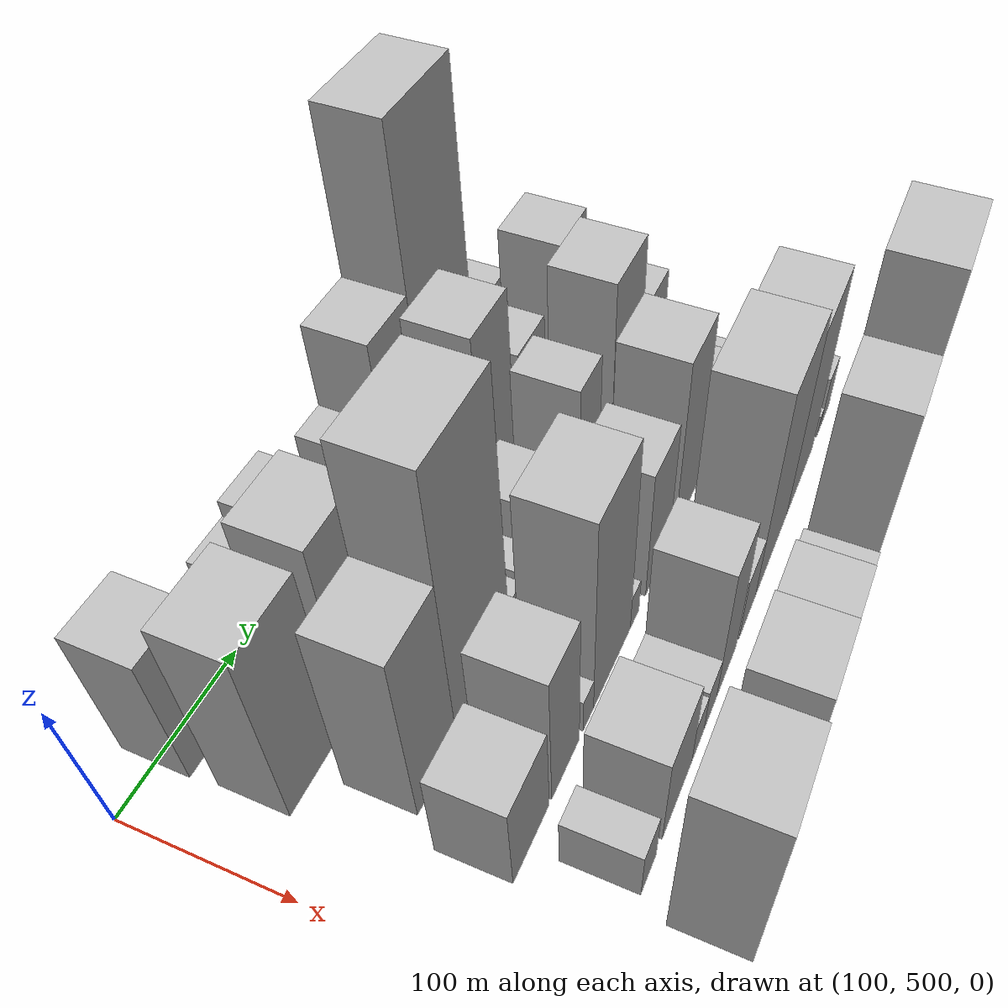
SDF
<sdf version="1.6">
 <world name="default">
  <model name="building_42">
   <static>1</static>
   <pose>100.0000 550.4257 0 0.000000 0.000000 0.000000</pose>
   <link name="link">
    <pose>0 0 49.50 0 0 0</pose>
    <collision name="collision"><geometry><box><size>40.0000 38.2665 99.0000</size></box></geometry></collision>
    <visual name="visual">
     <cast_shadows>0</cast_shadows>
     <geometry><box><size>40.0000 38.2665 99.0000</size></box></geometry>
     <material>
      <script>
       <uri>model://HANNAS_wall/materials/scripts</uri>
       <uri>model://HANNAS_wall/materials/textures</uri>
       <name>vrc/HANNAS_wall</name>
      </script>
     </material>
    </visual>
   </link>
  </model>
  <model name="building_43">
   <static>1</static>
   <pose>100.0000 574.9701 0 0.000000 0.000000 0.000000</pose>
   <link name="link">
    <pose>0 0 12.00 0 0 0</pose>
    <collision name="collision"><geometry><box><size>40.0000 10.8223 24.0000</size></box></geometry></collision>
    <visual name="visual">
     <cast_shadows>0</cast_shadows>
     <geometry><box><size>40.0000 10.8223 24.0000</size></box></geometry>
     <material>
      <script>
       <uri>model://HANNAS_wall/materials/scripts</uri>
       <uri>model://HANNAS_wall/materials/textures</uri>
       <name>vrc/HANNAS_wall</name>
      </script>
     </material>
    </visual>
   </link>
  </model>
  <model name="building_44">
   <static>1</static>
   <pose>100.0000 598.8165 0 0.000000 0.000000 0.000000</pose>
   <link name="link">
    <pose>0 0 18.00 0 0 0</pose>
    <collision name="collision"><geometry><box><size>40.0000 18.8705 36.0000</size></box></geometry></collision>
    <visual name="visual">
     <cast_shadows>0</cast_shadows>
     <geometry><box><size>40.0000 18.8705 36.0000</size></box></geometry>
     <material>
      <script>
       <uri>model://HANNAS_wall/materials/scripts</uri>
       <uri>model://HANNAS_wall/materials/textures</uri>
       <name>vrc/HANNAS_wall</name>
      </script>
     </material>
    </visual>
   </link>
  </model>
  <model name="building_45">
   <static>1</static>
   <pose>100.0000 624.0069 0 0.000000 0.000000 0.000000</pose>
   <link name="link">
    <pose>0 0 28.50 0 0 0</pose>
    <collision name="collision"><geometry><box><size>40.0000 31.5103 57.0000</size></box></geometry></collision>
    <visual name="visual">
     <cast_shadows>0</cast_shadows>
     <geometry><box><size>40.0000 31.5103 57.0000</size></box></geometry>
     <material>
      <script>
       <uri>model://HANNAS_wall/materials/scripts</uri>
       <uri>model://HANNAS_wall/materials/textures</uri>
       <name>vrc/HANNAS_wall</name>
      </script>
     </material>
    </visual>
   </link>
  </model>
  <model name="building_46">
   <static>1</static>
   <pose>100.0000 658.3995 0 0.000000 0.000000 0.000000</pose>
   <link name="link">
    <pose>0 0 34.50 0 0 0</pose>
    <collision name="collision"><geometry><box><size>40.0000 37.2749 69.0000</size></box></geometry></collision>
    <visual name="visual">
     <cast_shadows>0</cast_shadows>
     <geometry><box><size>40.0000 37.2749 69.0000</size></box></geometry>
     <material>
      <script>
       <uri>model://HANNAS_wall/materials/scripts</uri>
       <uri>model://HANNAS_wall/materials/textures</uri>
       <name>vrc/HANNAS_wall</name>
      </script>
     </material>
    </visual>
   </link>
  </model>
  <model name="building_47">
   <static>1</static>
   <pose>100.0000 689.6576 0 0.000000 0.000000 0.000000</pose>
   <link name="link">
    <pose>0 0 16.50 0 0 0</pose>
    <collision name="collision"><geometry><box><size>40.0000 19.2412 33.0000</size></box></geometry></collision>
    <visual name="visual">
     <cast_shadows>0</cast_shadows>
     <geometry><box><size>40.0000 19.2412 33.0000</size></box></geometry>
     <material>
      <script>
       <uri>model://HANNAS_wall/materials/scripts</uri>
       <uri>model://HANNAS_wall/materials/textures</uri>
       <name>vrc/HANNAS_wall</name>
      </script>
     </material>
    </visual>
   </link>
  </model>
  <model name="building_48">
   <static>1</static>
   <pose>100.0000 719.0875 0 0.000000 0.000000 0.000000</pose>
   <link name="link">
    <pose>0 0 25.50 0 0 0</pose>
    <collision name="collision"><geometry><box><size>40.0000 25.6186 51.0000</size></box></geometry></collision>
    <visual name="visual">
     <cast_shadows>0</cast_shadows>
     <geometry><box><size>40.0000 25.6186 51.0000</size></box></geometry>
     <material>
      <script>
       <uri>model://HANNAS_wall/materials/scripts</uri>
       <uri>model://HANNAS_wall/materials/textures</uri>
       <name>vrc/HANNAS_wall</name>
      </script>
     </material>
    </visual>
   </link>
  </model>
  <model name="building_49">
   <static>1</static>
   <pose>100.0000 753.2575 0 0.000000 0.000000 0.000000</pose>
   <link name="link">
    <pose>0 0 55.50 0 0 0</pose>
    <collision name="collision"><geometry><box><size>40.0000 42.7213 111.0000</size></box></geometry></collision>
    <visual name="visual">
     <cast_shadows>0</cast_shadows>
     <geometry><box><size>40.0000 42.7213 111.0000</size></box></geometry>
     <material>
      <script>
       <uri>model://HANNAS_wall/materials/scripts</uri>
       <uri>model://HANNAS_wall/materials/textures</uri>
       <name>vrc/HANNAS_wall</name>
      </script>
     </material>
    </visual>
   </link>
  </model>
  <model name="building_50">
   <static>1</static>
   <pose>100.0000 809.2298 0 0.000000 0.000000 0.000000</pose>
   <link name="link">
    <pose>0 0 109.50 0 0 0</pose>
    <collision name="collision"><geometry><box><size>40.0000 69.2233 219.0000</size></box></geometry></collision>
    <visual name="visual">
     <cast_shadows>0</cast_shadows>
     <geometry><box><size>40.0000 69.2233 219.0000</size></box></geometry>
     <material>
      <script>
       <uri>model://HANNAS_wall/materials/scripts</uri>
       <uri>model://HANNAS_wall/materials/textures</uri>
       <name>vrc/HANNAS_wall</name>
      </script>
     </material>
    </visual>
   </link>
  </model>
  <model name="building_51">
   <static>1</static>
   <pose>100.0000 854.1598 0 0.000000 0.000000 0.000000</pose>
   <link name="link">
    <pose>0 0 18.00 0 0 0</pose>
    <collision name="collision"><geometry><box><size>40.0000 20.6368 36.0000</size></box></geometry></collision>
    <visual name="visual">
     <cast_shadows>0</cast_shadows>
     <geometry><box><size>40.0000 20.6368 36.0000</size></box></geometry>
     <material>
      <script>
       <uri>model://HANNAS_wall/materials/scripts</uri>
       <uri>model://HANNAS_wall/materials/textures</uri>
       <name>vrc/HANNAS_wall</name>
      </script>
     </material>
    </visual>
   </link>
  </model>
  <model name="building_52">
   <static>1</static>
   <pose>100.0000 883.8272 0 0.000000 0.000000 0.000000</pose>
   <link name="link">
    <pose>0 0 19.50 0 0 0</pose>
    <collision name="collision"><geometry><box><size>40.0000 20.6978 39.0000</size></box></geometry></collision>
    <visual name="visual">
     <cast_shadows>0</cast_shadows>
     <geometry><box><size>40.0000 20.6978 39.0000</size></box></geometry>
     <material>
      <script>
       <uri>model://HANNAS_wall/materials/scripts</uri>
       <uri>model://HANNAS_wall/materials/textures</uri>
       <name>vrc/HANNAS_wall</name>
      </script>
     </material>
    </visual>
   </link>
  </model>
  <model name="building_96">
   <static>1</static>
   <pose>155.0000 557.0531 0 0.000000 0.000000 0.000000</pose>
   <link name="link">
    <pose>0 0 67.50 0 0 0</pose>
    <collision name="collision"><geometry><box><size>40.0000 47.2754 135.0000</size></box></geometry></collision>
    <visual name="visual">
     <cast_shadows>0</cast_shadows>
     <geometry><box><size>40.0000 47.2754 135.0000</size></box></geometry>
     <material>
      <script>
       <uri>model://HANNAS_wall/materials/scripts</uri>
       <uri>model://HANNAS_wall/materials/textures</uri>
       <name>vrc/HANNAS_wall</name>
      </script>
     </material>
    </visual>
   </link>
  </model>
  <model name="building_97">
   <static>1</static>
   <pose>155.0000 585.0731 0 0.000000 0.000000 0.000000</pose>
   <link name="link">
    <pose>0 0 9.00 0 0 0</pose>
    <collision name="collision"><geometry><box><size>40.0000 8.7645 18.0000</size></box></geometry></collision>
    <visual name="visual">
     <cast_shadows>0</cast_shadows>
     <geometry><box><size>40.0000 8.7645 18.0000</size></box></geometry>
     <material>
      <script>
       <uri>model://HANNAS_wall/materials/scripts</uri>
       <uri>model://HANNAS_wall/materials/textures</uri>
       <name>vrc/HANNAS_wall</name>
      </script>
     </material>
    </visual>
   </link>
  </model>
  <model name="building_98">
   <static>1</static>
   <pose>155.0000 611.7370 0 0.000000 0.000000 0.000000</pose>
   <link name="link">
    <pose>0 0 69.00 0 0 0</pose>
    <collision name="collision"><geometry><box><size>40.0000 44.5635 138.0000</size></box></geometry></collision>
    <visual name="visual">
     <cast_shadows>0</cast_shadows>
     <geometry><box><size>40.0000 44.5635 138.0000</size></box></geometry>
     <material>
      <script>
       <uri>model://HANNAS_wall/materials/scripts</uri>
       <uri>model://HANNAS_wall/materials/textures</uri>
       <name>vrc/HANNAS_wall</name>
      </script>
     </material>
    </visual>
   </link>
  </model>
  <model name="building_99">
   <static>1</static>
   <pose>155.0000 651.3429 0 0.000000 0.000000 0.000000</pose>
   <link name="link">
    <pose>0 0 31.50 0 0 0</pose>
    <collision name="collision"><geometry><box><size>40.0000 34.6483 63.0000</size></box></geometry></collision>
    <visual name="visual">
     <cast_shadows>0</cast_shadows>
     <geometry><box><size>40.0000 34.6483 63.0000</size></box></geometry>
     <material>
      <script>
       <uri>model://HANNAS_wall/materials/scripts</uri>
       <uri>model://HANNAS_wall/materials/textures</uri>
       <name>vrc/HANNAS_wall</name>
      </script>
     </material>
    </visual>
   </link>
  </model>
  <model name="building_100">
   <static>1</static>
   <pose>155.0000 685.5887 0 0.000000 0.000000 0.000000</pose>
   <link name="link">
    <pose>0 0 52.50 0 0 0</pose>
    <collision name="collision"><geometry><box><size>40.0000 33.8432 105.0000</size></box></geometry></collision>
    <visual name="visual">
     <cast_shadows>0</cast_shadows>
     <geometry><box><size>40.0000 33.8432 105.0000</size></box></geometry>
     <material>
      <script>
       <uri>model://HANNAS_wall/materials/scripts</uri>
       <uri>model://HANNAS_wall/materials/textures</uri>
       <name>vrc/HANNAS_wall</name>
      </script>
     </material>
    </visual>
   </link>
  </model>
  <model name="building_101">
   <static>1</static>
   <pose>155.0000 722.6549 0 0.000000 0.000000 0.000000</pose>
   <link name="link">
    <pose>0 0 39.00 0 0 0</pose>
    <collision name="collision"><geometry><box><size>40.0000 40.2891 78.0000</size></box></geometry></collision>
    <visual name="visual">
     <cast_shadows>0</cast_shadows>
     <geometry><box><size>40.0000 40.2891 78.0000</size></box></geometry>
     <material>
      <script>
       <uri>model://HANNAS_wall/materials/scripts</uri>
       <uri>model://HANNAS_wall/materials/textures</uri>
       <name>vrc/HANNAS_wall</name>
      </script>
     </material>
    </visual>
   </link>
  </model>
  <model name="building_102">
   <static>1</static>
   <pose>155.0000 764.3181 0 0.000000 0.000000 0.000000</pose>
   <link name="link">
    <pose>0 0 63.00 0 0 0</pose>
    <collision name="collision"><geometry><box><size>40.0000 43.0373 126.0000</size></box></geometry></collision>
    <visual name="visual">
     <cast_shadows>0</cast_shadows>
     <geometry><box><size>40.0000 43.0373 126.0000</size></box></geometry>
     <material>
      <script>
       <uri>model://HANNAS_wall/materials/scripts</uri>
       <uri>model://HANNAS_wall/materials/textures</uri>
       <name>vrc/HANNAS_wall</name>
      </script>
     </material>
    </visual>
   </link>
  </model>
  <model name="building_103">
   <static>1</static>
   <pose>155.0000 813.4108 0 0.000000 0.000000 0.000000</pose>
   <link name="link">
    <pose>0 0 34.50 0 0 0</pose>
    <collision name="collision"><geometry><box><size>40.0000 37.1483 69.0000</size></box></geometry></collision>
    <visual name="visual">
     <cast_shadows>0</cast_shadows>
     <geometry><box><size>40.0000 37.1483 69.0000</size></box></geometry>
     <material>
      <script>
       <uri>model://HANNAS_wall/materials/scripts</uri>
       <uri>model://HANNAS_wall/materials/textures</uri>
       <name>vrc/HANNAS_wall</name>
      </script>
     </material>
    </visual>
   </link>
  </model>
  <model name="building_104">
   <static>1</static>
   <pose>155.0000 840.2839 0 0.000000 0.000000 0.000000</pose>
   <link name="link">
    <pose>0 0 15.00 0 0 0</pose>
    <collision name="collision"><geometry><box><size>40.0000 16.5977 30.0000</size></box></geometry></collision>
    <visual name="visual">
     <cast_shadows>0</cast_shadows>
     <geometry><box><size>40.0000 16.5977 30.0000</size></box></geometry>
     <material>
      <script>
       <uri>model://HANNAS_wall/materials/scripts</uri>
       <uri>model://HANNAS_wall/materials/textures</uri>
       <name>vrc/HANNAS_wall</name>
      </script>
     </material>
    </visual>
   </link>
  </model>
  <model name="building_105">
   <static>1</static>
   <pose>155.0000 852.5069 0 0.000000 0.000000 0.000000</pose>
   <link name="link">
    <pose>0 0 9.00 0 0 0</pose>
    <collision name="collision"><geometry><box><size>40.0000 7.8483 18.0000</size></box></geometry></collision>
    <visual name="visual">
     <cast_shadows>0</cast_shadows>
     <geometry><box><size>40.0000 7.8483 18.0000</size></box></geometry>
     <material>
      <script>
       <uri>model://HANNAS_wall/materials/scripts</uri>
       <uri>model://HANNAS_wall/materials/textures</uri>
       <name>vrc/HANNAS_wall</name>
      </script>
     </material>
    </visual>
   </link>
  </model>
  <model name="building_106">
   <static>1</static>
   <pose>155.0000 876.2023 0 0.000000 0.000000 0.000000</pose>
   <link name="link">
    <pose>0 0 51.00 0 0 0</pose>
    <collision name="collision"><geometry><box><size>40.0000 39.5424 102.0000</size></box></geometry></collision>
    <visual name="visual">
     <cast_shadows>0</cast_shadows>
     <geometry><box><size>40.0000 39.5424 102.0000</size></box></geometry>
     <material>
      <script>
       <uri>model://HANNAS_wall/materials/scripts</uri>
       <uri>model://HANNAS_wall/materials/textures</uri>
       <name>vrc/HANNAS_wall</name>
      </script>
     </material>
    </visual>
   </link>
  </model>
  <model name="building_152">
   <static>1</static>
   <pose>210.0000 578.0092 0 0.000000 0.000000 0.000000</pose>
   <link name="link">
    <pose>0 0 66.00 0 0 0</pose>
    <collision name="collision"><geometry><box><size>40.0000 41.3582 132.0000</size></box></geometry></collision>
    <visual name="visual">
     <cast_shadows>0</cast_shadows>
     <geometry><box><size>40.0000 41.3582 132.0000</size></box></geometry>
     <material>
      <script>
       <uri>model://HANNAS_wall/materials/scripts</uri>
       <uri>model://HANNAS_wall/materials/textures</uri>
       <name>vrc/HANNAS_wall</name>
      </script>
     </material>
    </visual>
   </link>
  </model>
  <model name="building_153">
   <static>1</static>
   <pose>210.0000 629.7726 0 0.000000 0.000000 0.000000</pose>
   <link name="link">
    <pose>0 0 102.00 0 0 0</pose>
    <collision name="collision"><geometry><box><size>40.0000 62.1686 204.0000</size></box></geometry></collision>
    <visual name="visual">
     <cast_shadows>0</cast_shadows>
     <geometry><box><size>40.0000 62.1686 204.0000</size></box></geometry>
     <material>
      <script>
       <uri>model://HANNAS_wall/materials/scripts</uri>
       <uri>model://HANNAS_wall/materials/textures</uri>
       <name>vrc/HANNAS_wall</name>
      </script>
     </material>
    </visual>
   </link>
  </model>
  <model name="building_154">
   <static>1</static>
   <pose>210.0000 669.2479 0 0.000000 0.000000 0.000000</pose>
   <link name="link">
    <pose>0 0 16.50 0 0 0</pose>
    <collision name="collision"><geometry><box><size>40.0000 16.7820 33.0000</size></box></geometry></collision>
    <visual name="visual">
     <cast_shadows>0</cast_shadows>
     <geometry><box><size>40.0000 16.7820 33.0000</size></box></geometry>
     <material>
      <script>
       <uri>model://HANNAS_wall/materials/scripts</uri>
       <uri>model://HANNAS_wall/materials/textures</uri>
       <name>vrc/HANNAS_wall</name>
      </script>
     </material>
    </visual>
   </link>
  </model>
  <model name="building_155">
   <static>1</static>
   <pose>210.0000 691.4380 0 0.000000 0.000000 0.000000</pose>
   <link name="link">
    <pose>0 0 16.50 0 0 0</pose>
    <collision name="collision"><geometry><box><size>40.0000 19.5983 33.0000</size></box></geometry></collision>
    <visual name="visual">
     <cast_shadows>0</cast_shadows>
     <geometry><box><size>40.0000 19.5983 33.0000</size></box></geometry>
     <material>
      <script>
       <uri>model://HANNAS_wall/materials/scripts</uri>
       <uri>model://HANNAS_wall/materials/textures</uri>
       <name>vrc/HANNAS_wall</name>
      </script>
     </material>
    </visual>
   </link>
  </model>
  <model name="building_156">
   <static>1</static>
   <pose>210.0000 719.7959 0 0.000000 0.000000 0.000000</pose>
   <link name="link">
    <pose>0 0 31.50 0 0 0</pose>
    <collision name="collision"><geometry><box><size>40.0000 37.1176 63.0000</size></box></geometry></collision>
    <visual name="visual">
     <cast_shadows>0</cast_shadows>
     <geometry><box><size>40.0000 37.1176 63.0000</size></box></geometry>
     <material>
      <script>
       <uri>model://HANNAS_wall/materials/scripts</uri>
       <uri>model://HANNAS_wall/materials/textures</uri>
       <name>vrc/HANNAS_wall</name>
      </script>
     </material>
    </visual>
   </link>
  </model>
  <model name="building_157">
   <static>1</static>
   <pose>210.0000 742.1201 0 0.000000 0.000000 0.000000</pose>
   <link name="link">
    <pose>0 0 9.00 0 0 0</pose>
    <collision name="collision"><geometry><box><size>40.0000 7.5308 18.0000</size></box></geometry></collision>
    <visual name="visual">
     <cast_shadows>0</cast_shadows>
     <geometry><box><size>40.0000 7.5308 18.0000</size></box></geometry>
     <material>
      <script>
       <uri>model://HANNAS_wall/materials/scripts</uri>
       <uri>model://HANNAS_wall/materials/textures</uri>
       <name>vrc/HANNAS_wall</name>
      </script>
     </material>
    </visual>
   </link>
  </model>
  <model name="building_158">
   <static>1</static>
   <pose>210.0000 769.8649 0 0.000000 0.000000 0.000000</pose>
   <link name="link">
    <pose>0 0 49.50 0 0 0</pose>
    <collision name="collision"><geometry><box><size>40.0000 29.9588 99.0000</size></box></geometry></collision>
    <visual name="visual">
     <cast_shadows>0</cast_shadows>
     <geometry><box><size>40.0000 29.9588 99.0000</size></box></geometry>
     <material>
      <script>
       <uri>model://HANNAS_wall/materials/scripts</uri>
       <uri>model://HANNAS_wall/materials/textures</uri>
       <name>vrc/HANNAS_wall</name>
      </script>
     </material>
    </visual>
   </link>
  </model>
  <model name="building_159">
   <static>1</static>
   <pose>210.0000 795.9917 0 0.000000 0.000000 0.000000</pose>
   <link name="link">
    <pose>0 0 15.00 0 0 0</pose>
    <collision name="collision"><geometry><box><size>40.0000 16.2948 30.0000</size></box></geometry></collision>
    <visual name="visual">
     <cast_shadows>0</cast_shadows>
     <geometry><box><size>40.0000 16.2948 30.0000</size></box></geometry>
     <material>
      <script>
       <uri>model://HANNAS_wall/materials/scripts</uri>
       <uri>model://HANNAS_wall/materials/textures</uri>
       <name>vrc/HANNAS_wall</name>
      </script>
     </material>
    </visual>
   </link>
  </model>
  <model name="building_160">
   <static>1</static>
   <pose>210.0000 826.7779 0 0.000000 0.000000 0.000000</pose>
   <link name="link">
    <pose>0 0 66.00 0 0 0</pose>
    <collision name="collision"><geometry><box><size>40.0000 45.2776 132.0000</size></box></geometry></collision>
    <visual name="visual">
     <cast_shadows>0</cast_shadows>
     <geometry><box><size>40.0000 45.2776 132.0000</size></box></geometry>
     <material>
      <script>
       <uri>model://HANNAS_wall/materials/scripts</uri>
       <uri>model://HANNAS_wall/materials/textures</uri>
       <name>vrc/HANNAS_wall</name>
      </script>
     </material>
    </visual>
   </link>
  </model>
  <model name="building_161">
   <static>1</static>
   <pose>210.0000 871.3362 0 0.000000 0.000000 0.000000</pose>
   <link name="link">
    <pose>0 0 37.50 0 0 0</pose>
    <collision name="collision"><geometry><box><size>40.0000 43.8389 75.0000</size></box></geometry></collision>
    <visual name="visual">
     <cast_shadows>0</cast_shadows>
     <geometry><box><size>40.0000 43.8389 75.0000</size></box></geometry>
     <material>
      <script>
       <uri>model://HANNAS_wall/materials/scripts</uri>
       <uri>model://HANNAS_wall/materials/textures</uri>
       <name>vrc/HANNAS_wall</name>
      </script>
     </material>
    </visual>
   </link>
  </model>
  <model name="building_202">
   <static>1</static>
   <pose>265.0000 565.7689 0 0.000000 0.000000 0.000000</pose>
   <link name="link">
    <pose>0 0 34.50 0 0 0</pose>
    <collision name="collision"><geometry><box><size>40.0000 40.6914 69.0000</size></box></geometry></collision>
    <visual name="visual">
     <cast_shadows>0</cast_shadows>
     <geometry><box><size>40.0000 40.6914 69.0000</size></box></geometry>
     <material>
      <script>
       <uri>model://HANNAS_wall/materials/scripts</uri>
       <uri>model://HANNAS_wall/materials/textures</uri>
       <name>vrc/HANNAS_wall</name>
      </script>
     </material>
    </visual>
   </link>
  </model>
  <model name="building_203">
   <static>1</static>
   <pose>265.0000 606.1366 0 0.000000 0.000000 0.000000</pose>
   <link name="link">
    <pose>0 0 52.50 0 0 0</pose>
    <collision name="collision"><geometry><box><size>40.0000 34.0441 105.0000</size></box></geometry></collision>
    <visual name="visual">
     <cast_shadows>0</cast_shadows>
     <geometry><box><size>40.0000 34.0441 105.0000</size></box></geometry>
     <material>
      <script>
       <uri>model://HANNAS_wall/materials/scripts</uri>
       <uri>model://HANNAS_wall/materials/textures</uri>
       <name>vrc/HANNAS_wall</name>
      </script>
     </material>
    </visual>
   </link>
  </model>
  <model name="building_204">
   <static>1</static>
   <pose>265.0000 634.8743 0 0.000000 0.000000 0.000000</pose>
   <link name="link">
    <pose>0 0 13.50 0 0 0</pose>
    <collision name="collision"><geometry><box><size>40.0000 13.4312 27.0000</size></box></geometry></collision>
    <visual name="visual">
     <cast_shadows>0</cast_shadows>
     <geometry><box><size>40.0000 13.4312 27.0000</size></box></geometry>
     <material>
      <script>
       <uri>model://HANNAS_wall/materials/scripts</uri>
       <uri>model://HANNAS_wall/materials/textures</uri>
       <name>vrc/HANNAS_wall</name>
      </script>
     </material>
    </visual>
   </link>
  </model>
  <model name="building_205">
   <static>1</static>
   <pose>265.0000 667.3376 0 0.000000 0.000000 0.000000</pose>
   <link name="link">
    <pose>0 0 75.00 0 0 0</pose>
    <collision name="collision"><geometry><box><size>40.0000 51.4954 150.0000</size></box></geometry></collision>
    <visual name="visual">
     <cast_shadows>0</cast_shadows>
     <geometry><box><size>40.0000 51.4954 150.0000</size></box></geometry>
     <material>
      <script>
       <uri>model://HANNAS_wall/materials/scripts</uri>
       <uri>model://HANNAS_wall/materials/textures</uri>
       <name>vrc/HANNAS_wall</name>
      </script>
     </material>
    </visual>
   </link>
  </model>
  <model name="building_206">
   <static>1</static>
   <pose>265.0000 699.6134 0 0.000000 0.000000 0.000000</pose>
   <link name="link">
    <pose>0 0 13.50 0 0 0</pose>
    <collision name="collision"><geometry><box><size>40.0000 13.0563 27.0000</size></box></geometry></collision>
    <visual name="visual">
     <cast_shadows>0</cast_shadows>
     <geometry><box><size>40.0000 13.0563 27.0000</size></box></geometry>
     <material>
      <script>
       <uri>model://HANNAS_wall/materials/scripts</uri>
       <uri>model://HANNAS_wall/materials/textures</uri>
       <name>vrc/HANNAS_wall</name>
      </script>
     </material>
    </visual>
   </link>
  </model>
  <model name="building_207">
   <static>1</static>
   <pose>265.0000 734.8294 0 0.000000 0.000000 0.000000</pose>
   <link name="link">
    <pose>0 0 49.50 0 0 0</pose>
    <collision name="collision"><geometry><box><size>40.0000 37.3757 99.0000</size></box></geometry></collision>
    <visual name="visual">
     <cast_shadows>0</cast_shadows>
     <geometry><box><size>40.0000 37.3757 99.0000</size></box></geometry>
     <material>
      <script>
       <uri>model://HANNAS_wall/materials/scripts</uri>
       <uri>model://HANNAS_wall/materials/textures</uri>
       <name>vrc/HANNAS_wall</name>
      </script>
     </material>
    </visual>
   </link>
  </model>
  <model name="building_208">
   <static>1</static>
   <pose>265.0000 783.5186 0 0.000000 0.000000 0.000000</pose>
   <link name="link">
    <pose>0 0 66.00 0 0 0</pose>
    <collision name="collision"><geometry><box><size>40.0000 40.0027 132.0000</size></box></geometry></collision>
    <visual name="visual">
     <cast_shadows>0</cast_shadows>
     <geometry><box><size>40.0000 40.0027 132.0000</size></box></geometry>
     <material>
      <script>
       <uri>model://HANNAS_wall/materials/scripts</uri>
       <uri>model://HANNAS_wall/materials/textures</uri>
       <name>vrc/HANNAS_wall</name>
      </script>
     </material>
    </visual>
   </link>
  </model>
  <model name="building_209">
   <static>1</static>
   <pose>265.0000 823.6337 0 0.000000 0.000000 0.000000</pose>
   <link name="link">
    <pose>0 0 36.00 0 0 0</pose>
    <collision name="collision"><geometry><box><size>40.0000 40.2276 72.0000</size></box></geometry></collision>
    <visual name="visual">
     <cast_shadows>0</cast_shadows>
     <geometry><box><size>40.0000 40.2276 72.0000</size></box></geometry>
     <material>
      <script>
       <uri>model://HANNAS_wall/materials/scripts</uri>
       <uri>model://HANNAS_wall/materials/textures</uri>
       <name>vrc/HANNAS_wall</name>
      </script>
     </material>
    </visual>
   </link>
  </model>
  <model name="building_210">
   <static>1</static>
   <pose>265.0000 856.1819 0 0.000000 0.000000 0.000000</pose>
   <link name="link">
    <pose>0 0 13.50 0 0 0</pose>
    <collision name="collision"><geometry><box><size>40.0000 10.8686 27.0000</size></box></geometry></collision>
    <visual name="visual">
     <cast_shadows>0</cast_shadows>
     <geometry><box><size>40.0000 10.8686 27.0000</size></box></geometry>
     <material>
      <script>
       <uri>model://HANNAS_wall/materials/scripts</uri>
       <uri>model://HANNAS_wall/materials/textures</uri>
       <name>vrc/HANNAS_wall</name>
      </script>
     </material>
    </visual>
   </link>
  </model>
  <model name="building_211">
   <static>1</static>
   <pose>265.0000 872.7451 0 0.000000 0.000000 0.000000</pose>
   <link name="link">
    <pose>0 0 21.00 0 0 0</pose>
    <collision name="collision"><geometry><box><size>40.0000 22.2577 42.0000</size></box></geometry></collision>
    <visual name="visual">
     <cast_shadows>0</cast_shadows>
     <geometry><box><size>40.0000 22.2577 42.0000</size></box></geometry>
     <material>
      <script>
       <uri>model://HANNAS_wall/materials/scripts</uri>
       <uri>model://HANNAS_wall/materials/textures</uri>
       <name>vrc/HANNAS_wall</name>
      </script>
     </material>
    </visual>
   </link>
  </model>
  <model name="building_212">
   <static>1</static>
   <pose>265.0000 890.4538 0 0.000000 0.000000 0.000000</pose>
   <link name="link">
    <pose>0 0 13.50 0 0 0</pose>
    <collision name="collision"><geometry><box><size>40.0000 13.1598 27.0000</size></box></geometry></collision>
    <visual name="visual">
     <cast_shadows>0</cast_shadows>
     <geometry><box><size>40.0000 13.1598 27.0000</size></box></geometry>
     <material>
      <script>
       <uri>model://HANNAS_wall/materials/scripts</uri>
       <uri>model://HANNAS_wall/materials/textures</uri>
       <name>vrc/HANNAS_wall</name>
      </script>
     </material>
    </visual>
   </link>
  </model>
  <model name="building_260">
   <static>1</static>
   <pose>320.0000 573.2337 0 0.000000 0.000000 0.000000</pose>
   <link name="link">
    <pose>0 0 19.50 0 0 0</pose>
    <collision name="collision"><geometry><box><size>40.0000 20.1006 39.0000</size></box></geometry></collision>
    <visual name="visual">
     <cast_shadows>0</cast_shadows>
     <geometry><box><size>40.0000 20.1006 39.0000</size></box></geometry>
     <material>
      <script>
       <uri>model://HANNAS_wall/materials/scripts</uri>
       <uri>model://HANNAS_wall/materials/textures</uri>
       <name>vrc/HANNAS_wall</name>
      </script>
     </material>
    </visual>
   </link>
  </model>
  <model name="building_261">
   <static>1</static>
   <pose>320.0000 612.2150 0 0.000000 0.000000 0.000000</pose>
   <link name="link">
    <pose>0 0 36.00 0 0 0</pose>
    <collision name="collision"><geometry><box><size>40.0000 41.8619 72.0000</size></box></geometry></collision>
    <visual name="visual">
     <cast_shadows>0</cast_shadows>
     <geometry><box><size>40.0000 41.8619 72.0000</size></box></geometry>
     <material>
      <script>
       <uri>model://HANNAS_wall/materials/scripts</uri>
       <uri>model://HANNAS_wall/materials/textures</uri>
       <name>vrc/HANNAS_wall</name>
      </script>
     </material>
    </visual>
   </link>
  </model>
  <model name="building_262">
   <static>1</static>
   <pose>320.0000 642.3257 0 0.000000 0.000000 0.000000</pose>
   <link name="link">
    <pose>0 0 16.50 0 0 0</pose>
    <collision name="collision"><geometry><box><size>40.0000 18.3595 33.0000</size></box></geometry></collision>
    <visual name="visual">
     <cast_shadows>0</cast_shadows>
     <geometry><box><size>40.0000 18.3595 33.0000</size></box></geometry>
     <material>
      <script>
       <uri>model://HANNAS_wall/materials/scripts</uri>
       <uri>model://HANNAS_wall/materials/textures</uri>
       <name>vrc/HANNAS_wall</name>
      </script>
     </material>
    </visual>
   </link>
  </model>
  <model name="building_263">
   <static>1</static>
   <pose>320.0000 661.4406 0 0.000000 0.000000 0.000000</pose>
   <link name="link">
    <pose>0 0 18.00 0 0 0</pose>
    <collision name="collision"><geometry><box><size>40.0000 19.8705 36.0000</size></box></geometry></collision>
    <visual name="visual">
     <cast_shadows>0</cast_shadows>
     <geometry><box><size>40.0000 19.8705 36.0000</size></box></geometry>
     <material>
      <script>
       <uri>model://HANNAS_wall/materials/scripts</uri>
       <uri>model://HANNAS_wall/materials/textures</uri>
       <name>vrc/HANNAS_wall</name>
      </script>
     </material>
    </visual>
   </link>
  </model>
  <model name="building_264">
   <static>1</static>
   <pose>320.0000 687.8087 0 0.000000 0.000000 0.000000</pose>
   <link name="link">
    <pose>0 0 52.50 0 0 0</pose>
    <collision name="collision"><geometry><box><size>40.0000 32.8657 105.0000</size></box></geometry></collision>
    <visual name="visual">
     <cast_shadows>0</cast_shadows>
     <geometry><box><size>40.0000 32.8657 105.0000</size></box></geometry>
     <material>
      <script>
       <uri>model://HANNAS_wall/materials/scripts</uri>
       <uri>model://HANNAS_wall/materials/textures</uri>
       <name>vrc/HANNAS_wall</name>
      </script>
     </material>
    </visual>
   </link>
  </model>
  <model name="building_265">
   <static>1</static>
   <pose>320.0000 723.8984 0 0.000000 0.000000 0.000000</pose>
   <link name="link">
    <pose>0 0 25.50 0 0 0</pose>
    <collision name="collision"><geometry><box><size>40.0000 29.3137 51.0000</size></box></geometry></collision>
    <visual name="visual">
     <cast_shadows>0</cast_shadows>
     <geometry><box><size>40.0000 29.3137 51.0000</size></box></geometry>
     <material>
      <script>
       <uri>model://HANNAS_wall/materials/scripts</uri>
       <uri>model://HANNAS_wall/materials/textures</uri>
       <name>vrc/HANNAS_wall</name>
      </script>
     </material>
    </visual>
   </link>
  </model>
  <model name="building_266">
   <static>1</static>
   <pose>320.0000 769.2463 0 0.000000 0.000000 0.000000</pose>
   <link name="link">
    <pose>0 0 78.00 0 0 0</pose>
    <collision name="collision"><geometry><box><size>40.0000 61.3822 156.0000</size></box></geometry></collision>
    <visual name="visual">
     <cast_shadows>0</cast_shadows>
     <geometry><box><size>40.0000 61.3822 156.0000</size></box></geometry>
     <material>
      <script>
       <uri>model://HANNAS_wall/materials/scripts</uri>
       <uri>model://HANNAS_wall/materials/textures</uri>
       <name>vrc/HANNAS_wall</name>
      </script>
     </material>
    </visual>
   </link>
  </model>
  <model name="building_267">
   <static>1</static>
   <pose>320.0000 827.9648 0 0.000000 0.000000 0.000000</pose>
   <link name="link">
    <pose>0 0 70.50 0 0 0</pose>
    <collision name="collision"><geometry><box><size>40.0000 56.0546 141.0000</size></box></geometry></collision>
    <visual name="visual">
     <cast_shadows>0</cast_shadows>
     <geometry><box><size>40.0000 56.0546 141.0000</size></box></geometry>
     <material>
      <script>
       <uri>model://HANNAS_wall/materials/scripts</uri>
       <uri>model://HANNAS_wall/materials/textures</uri>
       <name>vrc/HANNAS_wall</name>
      </script>
     </material>
    </visual>
   </link>
  </model>
  <model name="building_268">
   <static>1</static>
   <pose>320.0000 869.8099 0 0.000000 0.000000 0.000000</pose>
   <link name="link">
    <pose>0 0 9.00 0 0 0</pose>
    <collision name="collision"><geometry><box><size>40.0000 7.6356 18.0000</size></box></geometry></collision>
    <visual name="visual">
     <cast_shadows>0</cast_shadows>
     <geometry><box><size>40.0000 7.6356 18.0000</size></box></geometry>
     <material>
      <script>
       <uri>model://HANNAS_wall/materials/scripts</uri>
       <uri>model://HANNAS_wall/materials/textures</uri>
       <name>vrc/HANNAS_wall</name>
      </script>
     </material>
    </visual>
   </link>
  </model>
  <model name="building_269">
   <static>1</static>
   <pose>320.0000 884.4782 0 0.000000 0.000000 0.000000</pose>
   <link name="link">
    <pose>0 0 21.00 0 0 0</pose>
    <collision name="collision"><geometry><box><size>40.0000 21.7009 42.0000</size></box></geometry></collision>
    <visual name="visual">
     <cast_shadows>0</cast_shadows>
     <geometry><box><size>40.0000 21.7009 42.0000</size></box></geometry>
     <material>
      <script>
       <uri>model://HANNAS_wall/materials/scripts</uri>
       <uri>model://HANNAS_wall/materials/textures</uri>
       <name>vrc/HANNAS_wall</name>
      </script>
     </material>
    </visual>
   </link>
  </model>
  <model name="building_305">
   <static>1</static>
   <pose>375.0000 579.3666 0 0.000000 0.000000 0.000000</pose>
   <link name="link">
    <pose>0 0 64.50 0 0 0</pose>
    <collision name="collision"><geometry><box><size>40.0000 48.6394 129.0000</size></box></geometry></collision>
    <visual name="visual">
     <cast_shadows>0</cast_shadows>
     <geometry><box><size>40.0000 48.6394 129.0000</size></box></geometry>
     <material>
      <script>
       <uri>model://HANNAS_wall/materials/scripts</uri>
       <uri>model://HANNAS_wall/materials/textures</uri>
       <name>vrc/HANNAS_wall</name>
      </script>
     </material>
    </visual>
   </link>
  </model>
  <model name="building_306">
   <static>1</static>
   <pose>375.0000 614.6642 0 0.000000 0.000000 0.000000</pose>
   <link name="link">
    <pose>0 0 19.50 0 0 0</pose>
    <collision name="collision"><geometry><box><size>40.0000 21.9558 39.0000</size></box></geometry></collision>
    <visual name="visual">
     <cast_shadows>0</cast_shadows>
     <geometry><box><size>40.0000 21.9558 39.0000</size></box></geometry>
     <material>
      <script>
       <uri>model://HANNAS_wall/materials/scripts</uri>
       <uri>model://HANNAS_wall/materials/textures</uri>
       <name>vrc/HANNAS_wall</name>
      </script>
     </material>
    </visual>
   </link>
  </model>
  <model name="building_307">
   <static>1</static>
   <pose>375.0000 629.1619 0 0.000000 0.000000 0.000000</pose>
   <link name="link">
    <pose>0 0 7.50 0 0 0</pose>
    <collision name="collision"><geometry><box><size>40.0000 7.0396 15.0000</size></box></geometry></collision>
    <visual name="visual">
     <cast_shadows>0</cast_shadows>
     <geometry><box><size>40.0000 7.0396 15.0000</size></box></geometry>
     <material>
      <script>
       <uri>model://HANNAS_wall/materials/scripts</uri>
       <uri>model://HANNAS_wall/materials/textures</uri>
       <name>vrc/HANNAS_wall</name>
      </script>
     </material>
    </visual>
   </link>
  </model>
  <model name="building_308">
   <static>1</static>
   <pose>375.0000 664.1428 0 0.000000 0.000000 0.000000</pose>
   <link name="link">
    <pose>0 0 42.00 0 0 0</pose>
    <collision name="collision"><geometry><box><size>40.0000 44.9223 84.0000</size></box></geometry></collision>
    <visual name="visual">
     <cast_shadows>0</cast_shadows>
     <geometry><box><size>40.0000 44.9223 84.0000</size></box></geometry>
     <material>
      <script>
       <uri>model://HANNAS_wall/materials/scripts</uri>
       <uri>model://HANNAS_wall/materials/textures</uri>
       <name>vrc/HANNAS_wall</name>
      </script>
     </material>
    </visual>
   </link>
  </model>
  <model name="building_309">
   <static>1</static>
   <pose>375.0000 709.2503 0 0.000000 0.000000 0.000000</pose>
   <link name="link">
    <pose>0 0 36.00 0 0 0</pose>
    <collision name="collision"><geometry><box><size>40.0000 37.2926 72.0000</size></box></geometry></collision>
    <visual name="visual">
     <cast_shadows>0</cast_shadows>
     <geometry><box><size>40.0000 37.2926 72.0000</size></box></geometry>
     <material>
      <script>
       <uri>model://HANNAS_wall/materials/scripts</uri>
       <uri>model://HANNAS_wall/materials/textures</uri>
       <name>vrc/HANNAS_wall</name>
      </script>
     </material>
    </visual>
   </link>
  </model>
  <model name="building_310">
   <static>1</static>
   <pose>375.0000 741.8027 0 0.000000 0.000000 0.000000</pose>
   <link name="link">
    <pose>0 0 24.00 0 0 0</pose>
    <collision name="collision"><geometry><box><size>40.0000 27.8123 48.0000</size></box></geometry></collision>
    <visual name="visual">
     <cast_shadows>0</cast_shadows>
     <geometry><box><size>40.0000 27.8123 48.0000</size></box></geometry>
     <material>
      <script>
       <uri>model://HANNAS_wall/materials/scripts</uri>
       <uri>model://HANNAS_wall/materials/textures</uri>
       <name>vrc/HANNAS_wall</name>
      </script>
     </material>
    </visual>
   </link>
  </model>
  <model name="building_311">
   <static>1</static>
   <pose>375.0000 769.6028 0 0.000000 0.000000 0.000000</pose>
   <link name="link">
    <pose>0 0 10.50 0 0 0</pose>
    <collision name="collision"><geometry><box><size>40.0000 9.7878 21.0000</size></box></geometry></collision>
    <visual name="visual">
     <cast_shadows>0</cast_shadows>
     <geometry><box><size>40.0000 9.7878 21.0000</size></box></geometry>
     <material>
      <script>
       <uri>model://HANNAS_wall/materials/scripts</uri>
       <uri>model://HANNAS_wall/materials/textures</uri>
       <name>vrc/HANNAS_wall</name>
      </script>
     </material>
    </visual>
   </link>
  </model>
  <model name="building_312">
   <static>1</static>
   <pose>375.0000 804.1239 0 0.000000 0.000000 0.000000</pose>
   <link name="link">
    <pose>0 0 61.50 0 0 0</pose>
    <collision name="collision"><geometry><box><size>40.0000 45.2545 123.0000</size></box></geometry></collision>
    <visual name="visual">
     <cast_shadows>0</cast_shadows>
     <geometry><box><size>40.0000 45.2545 123.0000</size></box></geometry>
     <material>
      <script>
       <uri>model://HANNAS_wall/materials/scripts</uri>
       <uri>model://HANNAS_wall/materials/textures</uri>
       <name>vrc/HANNAS_wall</name>
      </script>
     </material>
    </visual>
   </link>
  </model>
  <model name="building_313">
   <static>1</static>
   <pose>375.0000 856.4834 0 0.000000 0.000000 0.000000</pose>
   <link name="link">
    <pose>0 0 88.50 0 0 0</pose>
    <collision name="collision"><geometry><box><size>40.0000 59.4644 177.0000</size></box></geometry></collision>
    <visual name="visual">
     <cast_shadows>0</cast_shadows>
     <geometry><box><size>40.0000 59.4644 177.0000</size></box></geometry>
     <material>
      <script>
       <uri>model://HANNAS_wall/materials/scripts</uri>
       <uri>model://HANNAS_wall/materials/textures</uri>
       <name>vrc/HANNAS_wall</name>
      </script>
     </material>
    </visual>
   </link>
  </model>
  <model name="building_314">
   <static>1</static>
   <pose>375.0000 900.9629 0 0.000000 0.000000 0.000000</pose>
   <link name="link">
    <pose>0 0 25.50 0 0 0</pose>
    <collision name="collision"><geometry><box><size>40.0000 29.4946 51.0000</size></box></geometry></collision>
    <visual name="visual">
     <cast_shadows>0</cast_shadows>
     <geometry><box><size>40.0000 29.4946 51.0000</size></box></geometry>
     <material>
      <script>
       <uri>model://HANNAS_wall/materials/scripts</uri>
       <uri>model://HANNAS_wall/materials/textures</uri>
       <name>vrc/HANNAS_wall</name>
      </script>
     </material>
    </visual>
   </link>
  </model>
 </world>
</sdf>
